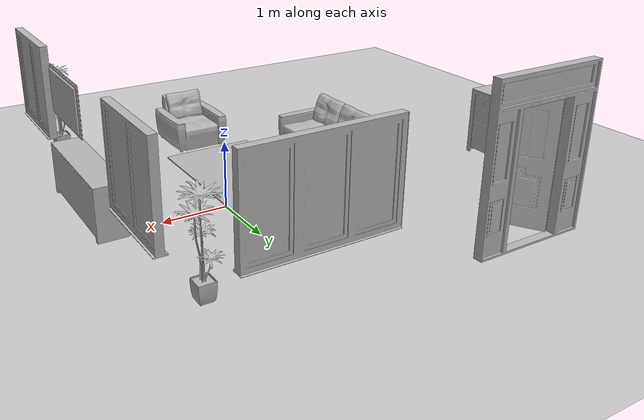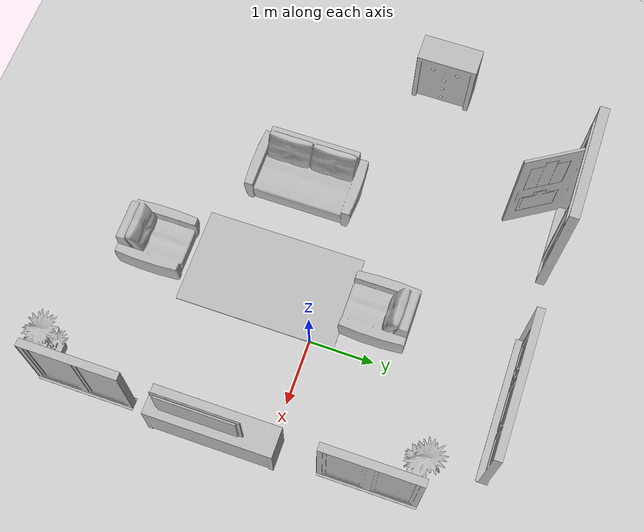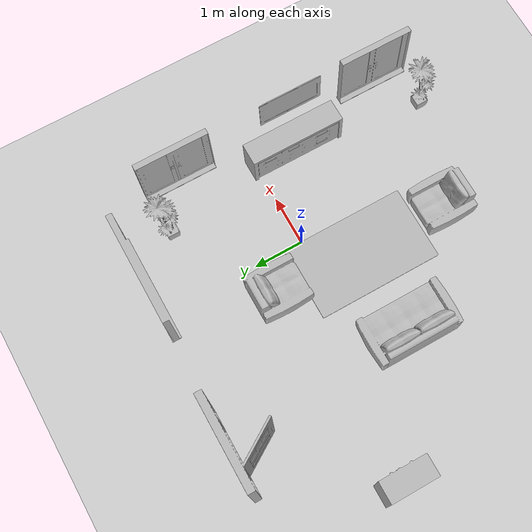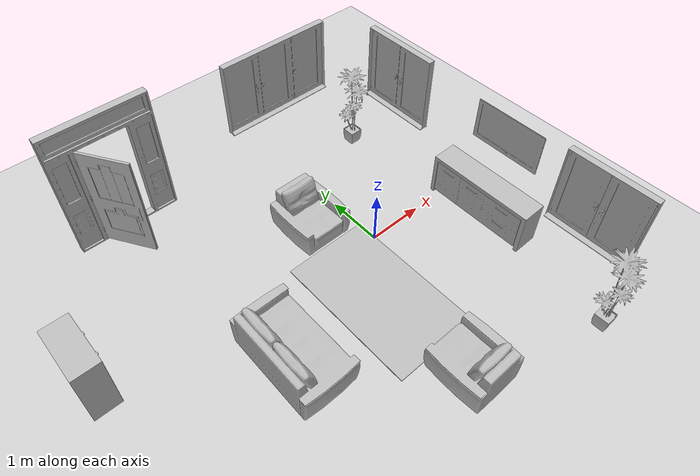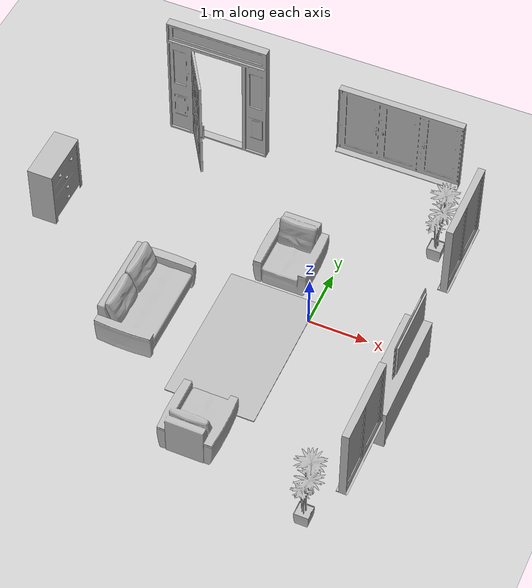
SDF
<sdf version="1.4">
 <world name="default">
  <light name="sun" type="directional">
   <pose>0 0 10 0 -0 0</pose>
   <diffuse>0.8 0.8 0.8 1</diffuse>
   <specular>0.2 0.2 0.2 1</specular>
   <attenuation>
    <range>1000</range>
    <constant>0.9</constant>
    <linear>0.01</linear>
    <quadratic>0.001</quadratic>
   </attenuation>
   <direction>-0.5 0.1 -0.9</direction>
  </light>
  <model name="ground_plane">
   <static>1</static>
   <link name="link">
    <collision name="collision">
     <geometry><plane><normal>0 0 1</normal><size>100 100</size></plane></geometry>
     <surface><friction><ode><mu>100</mu><mu2>50</mu2></ode></friction></surface>
    </collision>
    <visual name="visual">
     <cast_shadows>0</cast_shadows>
     <geometry><plane><normal>0 0 1</normal><size>100 100</size></plane></geometry>
     <material>
      <script><uri>file://media/materials/scripts/gazebo.material</uri><name>Gazebo/Grey</name></script>
     </material>
    </visual>
    <velocity_decay><linear>0</linear><angular>0</angular></velocity_decay>
   </link>
  </model>
  <physics type="ode">
   <max_step_size>0.001</max_step_size>
   <real_time_factor>1</real_time_factor>
   <real_time_update_rate>1000</real_time_update_rate>
   <gravity>0 0 -9.8</gravity>
  </physics>
  <scene><ambient>0.4 0.4 0.4 1</ambient><background>0.7 0.7 0.7 1</background><shadows>1</shadows></scene>
  <spherical_coordinates>
   <surface_model>EARTH_WGS84</surface_model>
   <latitude_deg>0</latitude_deg>
   <longitude_deg>0</longitude_deg>
   <elevation>0</elevation>
   <heading_deg>0</heading_deg>
  </spherical_coordinates>
  <model name="s__644_0">
   <pose>-2.38994 -0.872379 0.01 0 -0 0</pose>
   <static>1</static>
   <link name="link">
    <collision name="collision"><geometry><box><size>0.96 1.74 2</size></box></geometry></collision>
    <visual name="visual"><geometry><mesh><uri>model://s__644/s__644.dae</uri></mesh></geometry></visual>
    <velocity_decay><linear>0</linear><angular>0</angular></velocity_decay>
   </link>
  </model>
  <model name="s__645_0">
   <pose>-0.677498 -2.63638 0.01 0 -0 1.5708</pose>
   <static>1</static>
   <link name="link">
    <collision name="collision"><geometry><box><size>1 0.95 2</size></box></geometry></collision>
    <visual name="visual"><geometry><mesh><uri>model://s__645/s__645.dae</uri></mesh></geometry></visual>
    <velocity_decay><linear>0</linear><angular>0</angular></velocity_decay>
   </link>
  </model>
  <model name="s__645_1">
   <pose>-0.666919 0.855622 0.01 0 0 -1.5708</pose>
   <static>1</static>
   <link name="link">
    <collision name="collision"><geometry><box><size>1 0.95 2</size></box></geometry></collision>
    <visual name="visual"><geometry><mesh><uri>model://s__645/s__645.dae</uri></mesh></geometry></visual>
    <velocity_decay><linear>0</linear><angular>0</angular></velocity_decay>
   </link>
  </model>
  <model name="238_0">
   <pose>-0.743262 -0.872379 0.01 0 -0 0</pose>
   <static>1</static>
   <link name="link">
    <collision name="collision"><geometry><box><size>1.5 2.5 0</size></box></geometry></collision>
    <visual name="visual"><geometry><mesh><uri>model://238/238.dae</uri></mesh></geometry></visual>
    <velocity_decay><linear>0</linear><angular>0</angular></velocity_decay>
   </link>
  </model>
  <model name="s__563_0">
   <pose>1.72831 -0.800378 0.01 0 0 -3.14159</pose>
   <static>1</static>
   <link name="link">
    <collision name="collision"><geometry><box><size>0.48 1.90001 2</size></box></geometry></collision>
    <visual name="visual"><geometry><mesh><uri>model://s__563/s__563.dae</uri></mesh></geometry></visual>
    <velocity_decay><linear>0</linear><angular>0</angular></velocity_decay>
   </link>
  </model>
  <model name="228_0">
   <pose>1.93675 -0.848382 1.32968 0 0 -3.14159</pose>
   <static>1</static>
   <link name="link">
    <collision name="collision"><geometry><box><size>0.05 1.24002 2</size></box></geometry></collision>
    <visual name="visual"><geometry><mesh><uri>model://228/228.dae</uri></mesh></geometry></visual>
    <velocity_decay><linear>0</linear><angular>0</angular></velocity_decay>
   </link>
  </model>
  <model name="464_0">
   <pose>-4.73648 0.651617 0.01 0 -0 0</pose>
   <static>1</static>
   <link name="link">
    <collision name="collision"><geometry><box><size>0.45997 0.94 2</size></box></geometry></collision>
    <visual name="visual"><geometry><mesh><uri>model://464/464.dae</uri></mesh></geometry></visual>
    <velocity_decay><linear>0</linear><angular>0</angular></velocity_decay>
   </link>
  </model>
  <model name="757_0">
   <pose>-2.89294 2.98776 0 0 -0 1.5708</pose>
   <static>1</static>
   <link name="link">
    <collision name="collision"><geometry><box><size>0.900001 1.76 2</size></box></geometry></collision>
    <visual name="visual"><geometry><mesh><uri>model://757/757.dae</uri></mesh></geometry></visual>
    <velocity_decay><linear>0</linear><angular>0</angular></velocity_decay>
   </link>
  </model>
  <model name="623_0">
   <pose>1.42336 -3.38038 0.01 0 -0 0</pose>
   <static>1</static>
   <link name="link">
    <collision name="collision"><geometry><box><size>0.529798 0.561408 2</size></box></geometry></collision>
    <visual name="visual"><geometry><mesh><uri>model://623/623.dae</uri></mesh></geometry></visual>
    <velocity_decay><linear>0</linear><angular>0</angular></velocity_decay>
   </link>
  </model>
  <model name="623_1">
   <pose>1.39011 2.09162 0.01 0 -0 0</pose>
   <static>1</static>
   <link name="link">
    <collision name="collision"><geometry><box><size>0.529798 0.561408 2</size></box></geometry></collision>
    <visual name="visual"><geometry><mesh><uri>model://623/623.dae</uri></mesh></geometry></visual>
    <velocity_decay><linear>0</linear><angular>0</angular></velocity_decay>
   </link>
  </model>
  <model name="212_0">
   <pose>1.90547 1.48362 0.81 0 -0 3.14159</pose>
   <static>1</static>
   <link name="link">
    <collision name="collision"><geometry><box><size>0.175 1.4 2</size></box></geometry></collision>
    <visual name="visual"><geometry><mesh><uri>model://212/212.dae</uri></mesh></geometry></visual>
    <velocity_decay><linear>0</linear><angular>0</angular></velocity_decay>
   </link>
  </model>
  <model name="211_0">
   <pose>0.312001 2.91619 0.81 0 0 -1.5708</pose>
   <static>1</static>
   <link name="link">
    <collision name="collision"><geometry><box><size>0.175 2.1 2</size></box></geometry></collision>
    <visual name="visual"><geometry><mesh><uri>model://211/211.dae</uri></mesh></geometry></visual>
    <velocity_decay><linear>0</linear><angular>0</angular></velocity_decay>
   </link>
  </model>
  <model name="212_1">
   <pose>1.89361 -2.57105 0.81 0 -0 3.14159</pose>
   <static>1</static>
   <link name="link">
    <collision name="collision"><geometry><box><size>0.175 1.4 2</size></box></geometry></collision>
    <visual name="visual"><geometry><mesh><uri>model://212/212.dae</uri></mesh></geometry></visual>
    <velocity_decay><linear>0</linear><angular>0</angular></velocity_decay>
   </link>
  </model>
 </world>
</sdf>
